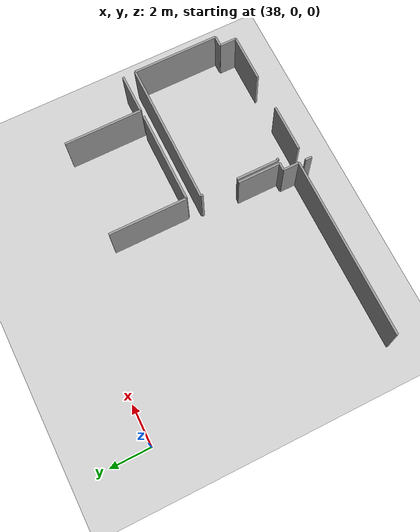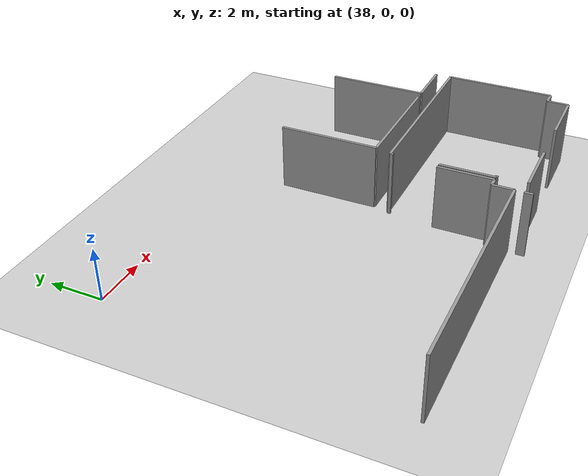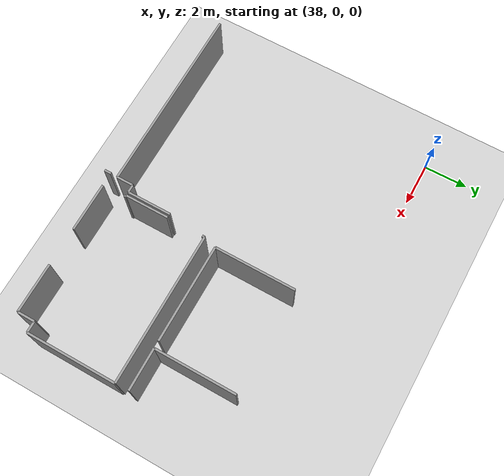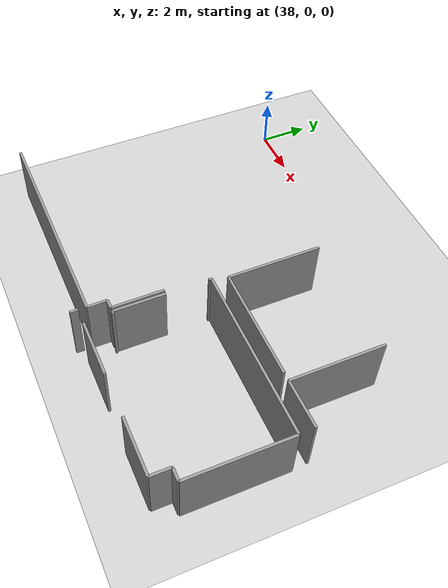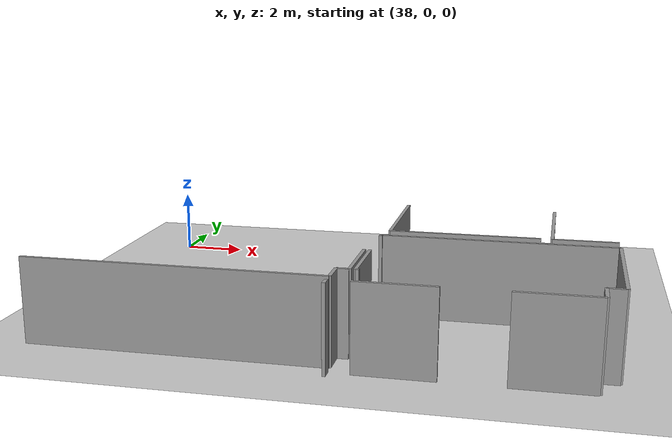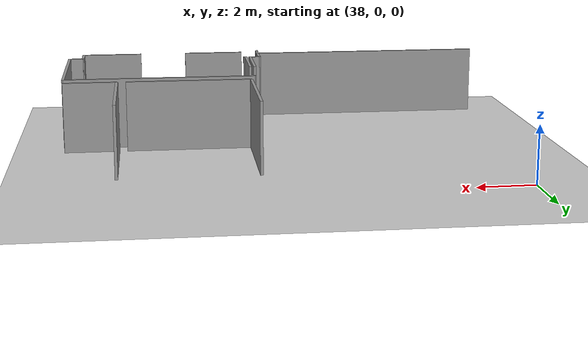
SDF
<sdf version="1.6">
 <world name="default">
  <model name="ground_plane">
   <static>1</static>
   <link name="link">
    <collision name="collision">
     <geometry><plane><normal>0 0 1</normal><size>100 100</size></plane></geometry>
     <surface><friction><ode><mu>100</mu><mu2>50</mu2></ode></friction></surface>
    </collision>
    <visual name="visual">
     <cast_shadows>0</cast_shadows>
     <geometry><plane><normal>0 0 1</normal><size>100 100</size></plane></geometry>
     <material>
      <script><uri>file://media/materials/scripts/gazebo.material</uri><name>Gazebo/Grey</name></script>
     </material>
    </visual>
   </link>
  </model>
  <model name="50045367">
   <static>1</static>
   <link name="Wall_224">
    <collision name="Wall_224_Collision">
     <geometry><box><size>3.70648915087 0.1 2.5</size></box></geometry>
     <pose>1.85324457544 0 1.25 0 0 0</pose>
    </collision>
    <visual name="Wall_224_Visual">
     <pose>1.85324457544 0 1.25 0 0 0</pose>
     <geometry><box><size>3.70648915087 0.1 2.5</size></box></geometry>
     <material>
      <script><uri>file://media/materials/scripts/gazebo.material</uri><name>Gazebo/Grey</name></script>
      <ambient>1 1 1 1</ambient>
     </material>
    </visual>
    <pose>99.8339600589 -31.5242136287 0 0 0 1.57079632679</pose>
   </link>
   <link name="Wall_232">
    <collision name="Wall_232_Collision">
     <geometry><box><size>4.42946848726 0.1 2.5</size></box></geometry>
     <pose>2.21473424363 0 1.25 0 0 0</pose>
    </collision>
    <visual name="Wall_232_Visual">
     <pose>2.21473424363 0 1.25 0 0 0</pose>
     <geometry><box><size>4.42946848726 0.1 2.5</size></box></geometry>
     <material>
      <script><uri>file://media/materials/scripts/gazebo.material</uri><name>Gazebo/Grey</name></script>
      <ambient>1 1 1 1</ambient>
     </material>
    </visual>
    <pose>104.26342802 -31.5263732913 0 0 0 3.14110508659</pose>
   </link>
   <link name="Wall_233">
    <collision name="Wall_233_Collision">
     <geometry><box><size>3.70941104731 0.1 2.5</size></box></geometry>
     <pose>1.85470552365 0 1.25 0 0 0</pose>
    </collision>
    <visual name="Wall_233_Visual">
     <pose>1.85470552365 0 1.25 0 0 0</pose>
     <geometry><box><size>3.70941104731 0.1 2.5</size></box></geometry>
     <material>
      <script><uri>file://media/materials/scripts/gazebo.material</uri><name>Gazebo/Grey</name></script>
      <ambient>1 1 1 1</ambient>
     </material>
    </visual>
    <pose>104.586107018 -31.5271355252 0 0 0 1.57079632679</pose>
   </link>
   <link name="Wall_239">
    <collision name="Wall_239_Collision">
     <geometry><box><size>1.88402042659 0.1 2.5</size></box></geometry>
     <pose>0.942010213297 0 1.25 0 0 0</pose>
    </collision>
    <visual name="Wall_239_Visual">
     <pose>0.942010213297 0 1.25 0 0 0</pose>
     <geometry><box><size>1.88402042659 0.1 2.5</size></box></geometry>
     <material>
      <script><uri>file://media/materials/scripts/gazebo.material</uri><name>Gazebo/Grey</name></script>
      <ambient>1 1 1 1</ambient>
     </material>
    </visual>
    <pose>106.470095025 -31.5160831343 0 0 0 -3.13572623404</pose>
   </link>
   <link name="Wall_241">
    <collision name="Wall_241_Collision">
     <geometry><box><size>0.0960414655216 0.1 2.5</size></box></geometry>
     <pose>0.0480207327608 0 1.25 0 0 0</pose>
    </collision>
    <visual name="Wall_241_Visual">
     <pose>0.0480207327608 0 1.25 0 0 0</pose>
     <geometry><box><size>0.0960414655216 0.1 2.5</size></box></geometry>
     <material>
      <script><uri>file://media/materials/scripts/gazebo.material</uri><name>Gazebo/Grey</name></script>
      <ambient>1 1 1 1</ambient>
     </material>
    </visual>
    <pose>99.7578637126 -35.935515016 0 0 0 3.14159265359</pose>
   </link>
   <link name="Wall_242">
    <collision name="Wall_242_Collision">
     <geometry><box><size>2.02932059556 0.1 2.5</size></box></geometry>
     <pose>1.01466029778 0 1.25 0 0 0</pose>
    </collision>
    <visual name="Wall_242_Visual">
     <pose>1.01466029778 0 1.25 0 0 0</pose>
     <geometry><box><size>2.02932059556 0.1 2.5</size></box></geometry>
     <material>
      <script><uri>file://media/materials/scripts/gazebo.material</uri><name>Gazebo/Grey</name></script>
      <ambient>1 1 1 1</ambient>
     </material>
    </visual>
    <pose>99.6618222471 -35.935515016 0 0 0 1.57079632679</pose>
   </link>
   <link name="Wall_243">
    <collision name="Wall_243_Collision">
     <geometry><box><size>0.113699883124 0.1 2.5</size></box></geometry>
     <pose>0.0568499415621 0 1.25 0 0 0</pose>
    </collision>
    <visual name="Wall_243_Visual">
     <pose>0.0568499415621 0 1.25 0 0 0</pose>
     <geometry><box><size>0.113699883124 0.1 2.5</size></box></geometry>
     <material>
      <script><uri>file://media/materials/scripts/gazebo.material</uri><name>Gazebo/Grey</name></script>
      <ambient>1 1 1 1</ambient>
     </material>
    </visual>
    <pose>99.6618222471 -32.2389349052 0 0 0 1.57079632679</pose>
   </link>
   <link name="Wall_244">
    <collision name="Wall_244_Collision">
     <geometry><box><size>6.81970628589 0.1 2.5</size></box></geometry>
     <pose>3.40985314294 0 1.25 0 0 0</pose>
    </collision>
    <visual name="Wall_244_Visual">
     <pose>3.40985314294 0 1.25 0 0 0</pose>
     <geometry><box><size>6.81970628589 0.1 2.5</size></box></geometry>
     <material>
      <script><uri>file://media/materials/scripts/gazebo.material</uri><name>Gazebo/Grey</name></script>
      <ambient>1 1 1 1</ambient>
     </material>
    </visual>
    <pose>99.6618222471 -32.1252350221 0 0 0 0.0</pose>
   </link>
   <link name="Wall_245">
    <collision name="Wall_245_Collision">
     <geometry><box><size>4.09344987042 0.1 2.5</size></box></geometry>
     <pose>2.04672493521 0 1.25 0 0 0</pose>
    </collision>
    <visual name="Wall_245_Visual">
     <pose>2.04672493521 0 1.25 0 0 0</pose>
     <geometry><box><size>4.09344987042 0.1 2.5</size></box></geometry>
     <material>
      <script><uri>file://media/materials/scripts/gazebo.material</uri><name>Gazebo/Grey</name></script>
      <ambient>1 1 1 1</ambient>
     </material>
    </visual>
    <pose>106.481528533 -32.1252350221 0 0 0 -1.57079632679</pose>
   </link>
   <link name="Wall_246">
    <collision name="Wall_246_Collision">
     <geometry><box><size>0.508155902231 0.1 2.5</size></box></geometry>
     <pose>0.254077951115 0 1.25 0 0 0</pose>
    </collision>
    <visual name="Wall_246_Visual">
     <pose>0.254077951115 0 1.25 0 0 0</pose>
     <geometry><box><size>0.508155902231 0.1 2.5</size></box></geometry>
     <material>
      <script><uri>file://media/materials/scripts/gazebo.material</uri><name>Gazebo/Grey</name></script>
      <ambient>1 1 1 1</ambient>
     </material>
    </visual>
    <pose>106.481528533 -36.2186848925 0 0 0 3.14159265359</pose>
   </link>
   <link name="Wall_247">
    <collision name="Wall_247_Collision">
     <geometry><box><size>0.80187001372 0.1 2.5</size></box></geometry>
     <pose>0.40093500686 0 1.25 0 0 0</pose>
    </collision>
    <visual name="Wall_247_Visual">
     <pose>0.40093500686 0 1.25 0 0 0</pose>
     <geometry><box><size>0.80187001372 0.1 2.5</size></box></geometry>
     <material>
      <script><uri>file://media/materials/scripts/gazebo.material</uri><name>Gazebo/Grey</name></script>
      <ambient>1 1 1 1</ambient>
     </material>
    </visual>
    <pose>105.973372631 -36.2186848925 0 0 0 -1.57079632679</pose>
   </link>
   <link name="Wall_248">
    <collision name="Wall_248_Collision">
     <geometry><box><size>2.23842674933 0.1 2.5</size></box></geometry>
     <pose>1.11921337466 0 1.25 0 0 0</pose>
    </collision>
    <visual name="Wall_248_Visual">
     <pose>1.11921337466 0 1.25 0 0 0</pose>
     <geometry><box><size>2.23842674933 0.1 2.5</size></box></geometry>
     <material>
      <script><uri>file://media/materials/scripts/gazebo.material</uri><name>Gazebo/Grey</name></script>
      <ambient>1 1 1 1</ambient>
     </material>
    </visual>
    <pose>105.973372631 -37.0205549062 0 0 0 3.14159265359</pose>
   </link>
   <link name="Wall_249">
    <collision name="Wall_249_Collision">
     <geometry><box><size>2.23512376845 0.1 2.5</size></box></geometry>
     <pose>1.11756188423 0 1.25 0 0 0</pose>
    </collision>
    <visual name="Wall_249_Visual">
     <pose>1.11756188423 0 1.25 0 0 0</pose>
     <geometry><box><size>2.23512376845 0.1 2.5</size></box></geometry>
     <material>
      <script><uri>file://media/materials/scripts/gazebo.material</uri><name>Gazebo/Grey</name></script>
      <ambient>1 1 1 1</ambient>
     </material>
    </visual>
    <pose>101.992987449 -37.0205549062 0 0 0 -3.14142214092</pose>
   </link>
   <link name="Wall_287">
    <collision name="Wall_287_Collision">
     <geometry><box><size>2.03643477819 0.1 2.5</size></box></geometry>
     <pose>1.01821738909 0 1.25 0 0 0</pose>
    </collision>
    <visual name="Wall_287_Visual">
     <pose>1.01821738909 0 1.25 0 0 0</pose>
     <geometry><box><size>2.03643477819 0.1 2.5</size></box></geometry>
     <material>
      <script><uri>file://media/materials/scripts/gazebo.material</uri><name>Gazebo/Grey</name></script>
      <ambient>1 1 1 1</ambient>
     </material>
    </visual>
    <pose>99.4952741501 -33.8908227044 0 0 0 -1.57079632679</pose>
   </link>
   <link name="Wall_288">
    <collision name="Wall_288_Collision">
     <geometry><box><size>0.356471365415 0.1 2.5</size></box></geometry>
     <pose>0.178235682707 0 1.25 0 0 0</pose>
    </collision>
    <visual name="Wall_288_Visual">
     <pose>0.178235682707 0 1.25 0 0 0</pose>
     <geometry><box><size>0.356471365415 0.1 2.5</size></box></geometry>
     <material>
      <script><uri>file://media/materials/scripts/gazebo.material</uri><name>Gazebo/Grey</name></script>
      <ambient>1 1 1 1</ambient>
     </material>
    </visual>
    <pose>99.4952741501 -35.9272574826 0 0 0 3.14159265359</pose>
   </link>
   <link name="Wall_289">
    <collision name="Wall_289_Collision">
     <geometry><box><size>0.774429595 0.1 2.5</size></box></geometry>
     <pose>0.3872147975 0 1.25 0 0 0</pose>
    </collision>
    <visual name="Wall_289_Visual">
     <pose>0.3872147975 0 1.25 0 0 0</pose>
     <geometry><box><size>0.774429595 0.1 2.5</size></box></geometry>
     <material>
      <script><uri>file://media/materials/scripts/gazebo.material</uri><name>Gazebo/Grey</name></script>
      <ambient>1 1 1 1</ambient>
     </material>
    </visual>
    <pose>99.1388027847 -35.9272574826 0 0 0 -1.57079632679</pose>
   </link>
   <link name="Wall_290">
    <collision name="Wall_290_Collision">
     <geometry><box><size>8.65059200163 0.1 2.5</size></box></geometry>
     <pose>4.32529600081 0 1.25 0 0 0</pose>
    </collision>
    <visual name="Wall_290_Visual">
     <pose>4.32529600081 0 1.25 0 0 0</pose>
     <geometry><box><size>8.65059200163 0.1 2.5</size></box></geometry>
     <material>
      <script><uri>file://media/materials/scripts/gazebo.material</uri><name>Gazebo/Grey</name></script>
      <ambient>1 1 1 1</ambient>
     </material>
    </visual>
    <pose>99.1388027847 -36.7016870776 0 0 0 3.14159265359</pose>
   </link>
   <link name="Wall_472">
    <collision name="Wall_472_Collision">
     <geometry><box><size>0.314675542456 0.1 2.5</size></box></geometry>
     <pose>0.157337771228 0 1.25 0 0 0</pose>
    </collision>
    <visual name="Wall_472_Visual">
     <pose>0.157337771228 0 1.25 0 0 0</pose>
     <geometry><box><size>0.314675542456 0.1 2.5</size></box></geometry>
     <material>
      <script><uri>file://media/materials/scripts/gazebo.material</uri><name>Gazebo/Grey</name></script>
      <ambient>1 1 1 1</ambient>
     </material>
    </visual>
    <pose>99.1285126277 -37.0203008283 0 0 0 -1.57079632679</pose>
   </link>
   <pose>-53.2 25.6193734438 0 0 0 0</pose>
  </model>
 </world>
</sdf>
